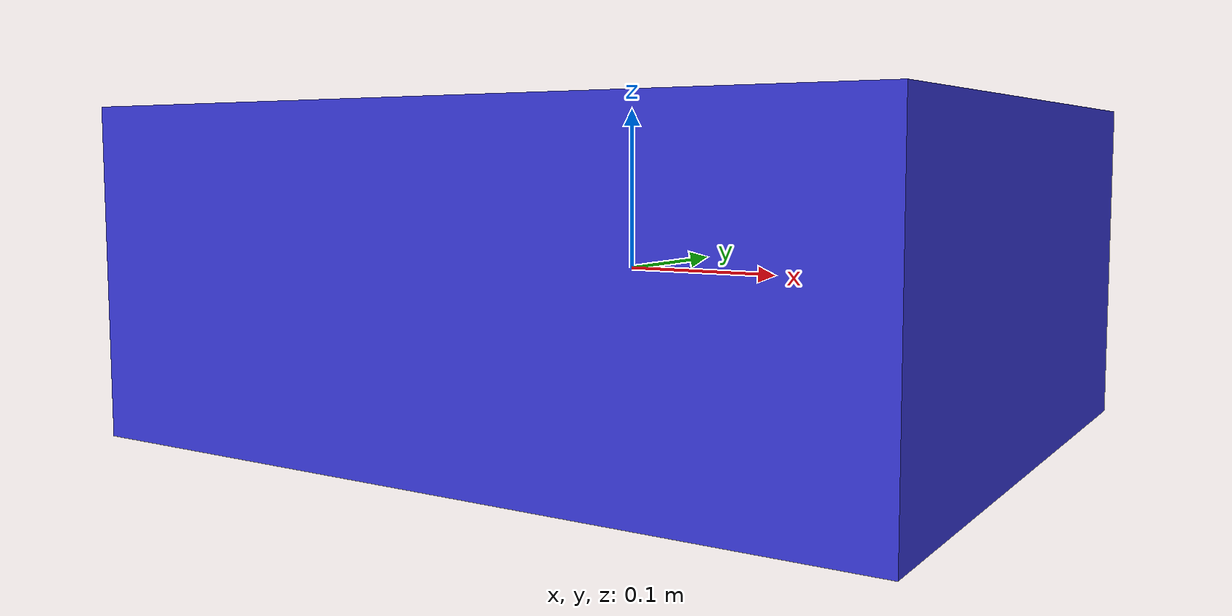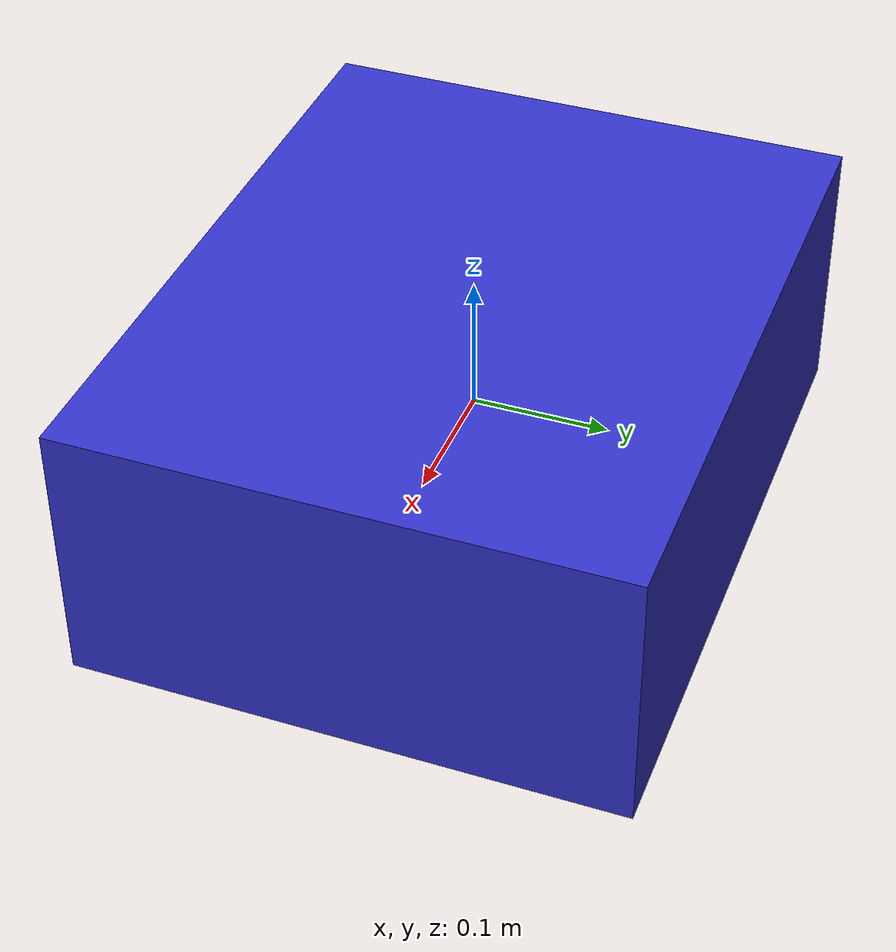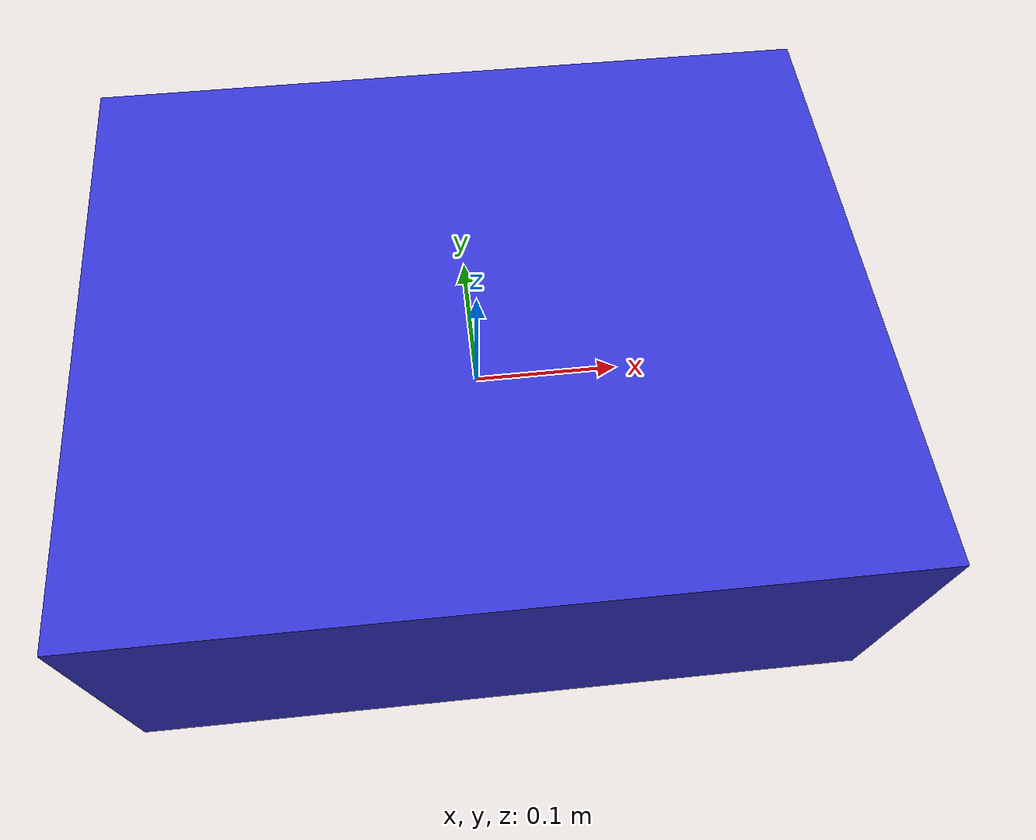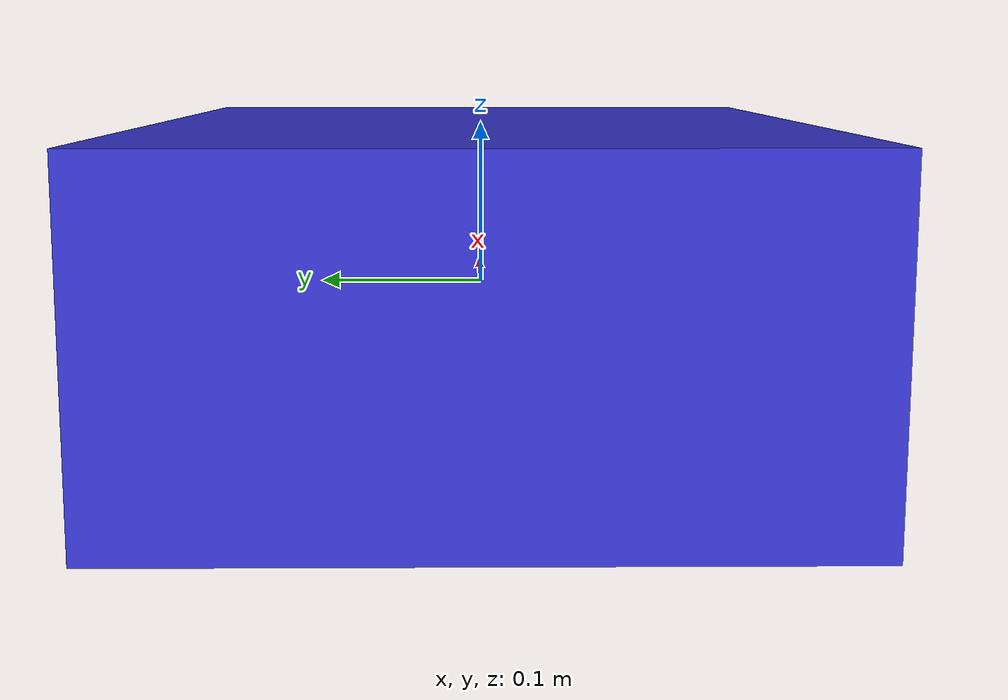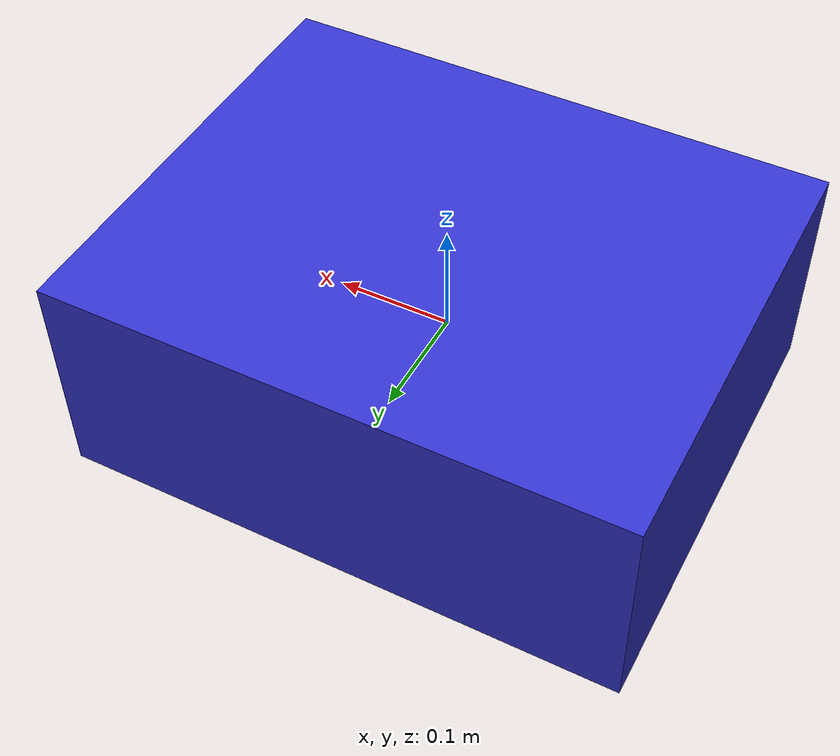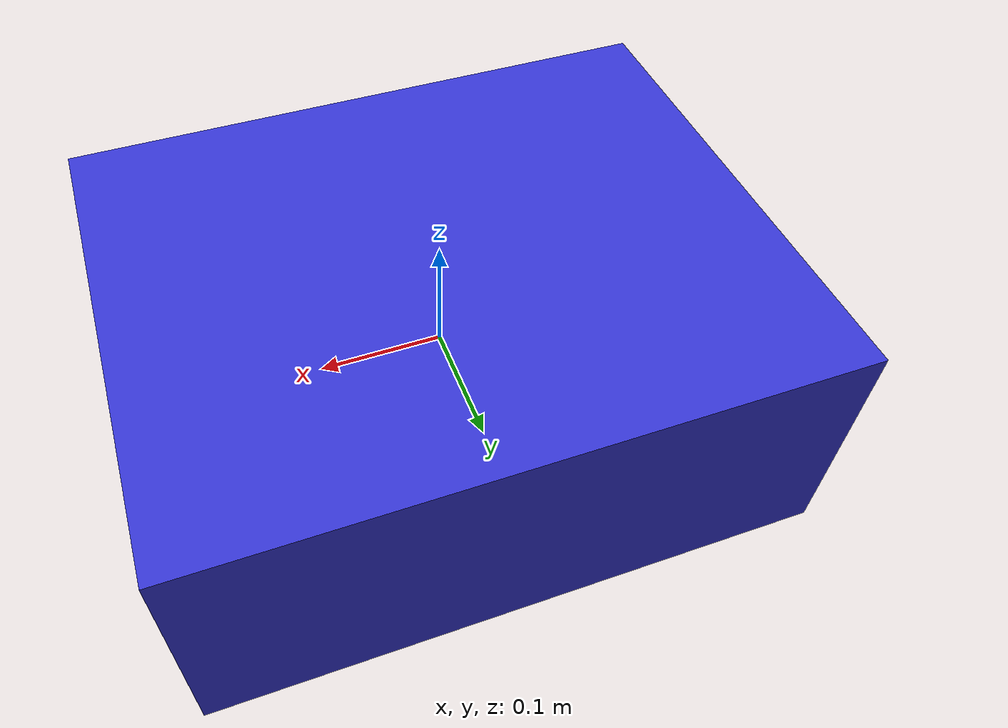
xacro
<?xml version="1.0"?>
<robot xmlns:xacro="http://ros.org/wiki/xacro" name="mobile_base_only">

  <!-- ========== BASE MOBILE ========== -->
  <link name="base_link">
    <visual>
      <geometry>
        <box size="0.5 0.4 0.2"/>
      </geometry>
      <material name="blue">
        <color rgba="0.2 0.2 0.8 1.0"/>
      </material>
    </visual>
    <collision>
      <geometry>
        <box size="0.5 0.4 0.2"/>
      </geometry>
    </collision>
    <inertial>
      <mass value="50.0"/>
      <origin xyz="0 0 0" rpy="0 0 0"/>
      <inertia ixx="1.0" ixy="0.0" ixz="0.0" iyy="1.0" iyz="0.0" izz="1.0"/>
    </inertial>
  </link>

  <gazebo reference="base_link">
    <material>Gazebo/Blue</material>
    <mu1>1.0</mu1>
    <mu2>1.0</mu2>
    <kp>10000000.0</kp>
    <kd>100.0</kd>
  </gazebo>

</robot>
